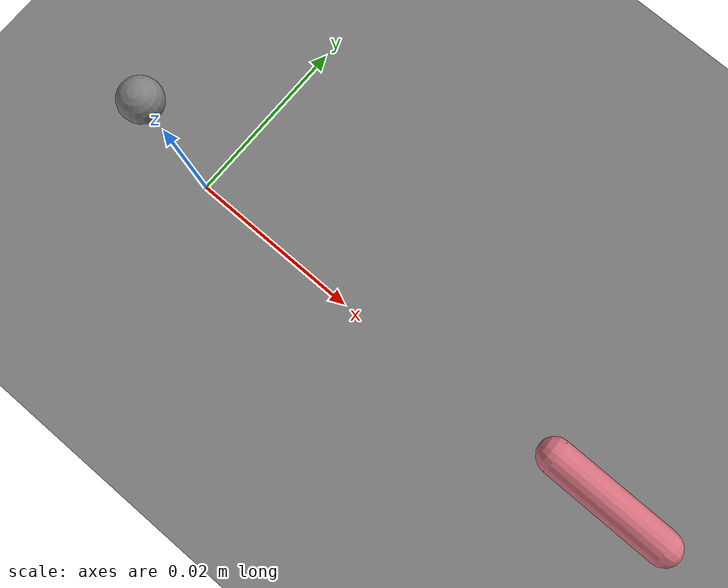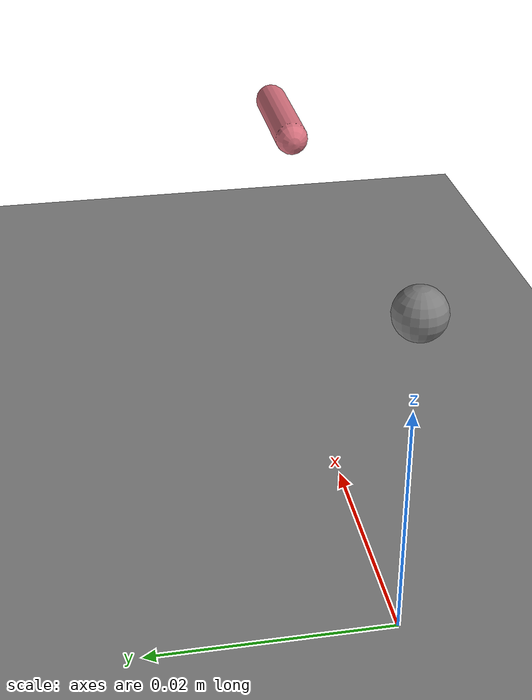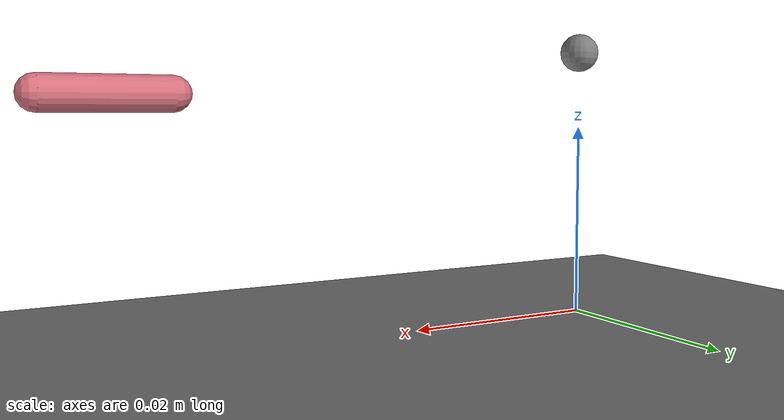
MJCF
<?xml version="1.0" encoding="utf-8"?>
<mujoco model="gecko_body_lab_candidate_v2">
  <compiler meshdir="meshes" texturedir="textures" angle="degree" autolimits="true" inertiafromgeom="true" eulerseq="xyz" />
  <option timestep="0.0008" iterations="100" ls_iterations="50" integrator="implicitfast" cone="elliptic" jacobian="dense">
    <flag eulerdamp="disable" />
  </option>
  <statistic center="0 0 0.02" extent="0.28" meansize="0.01" />
  <visual>
    <global offwidth="640" offheight="480" azimuth="135" elevation="-20" />
    <quality shadowsize="2048" />
    <headlight diffuse="0.7 0.7 0.7" ambient="0.35 0.35 0.35" />
    <map force="0.01" />
  </visual>
  <default>
    <!-- joints: small armature+damping stabilise the light limbs [EST] -->
    <joint type="hinge" limited="true" armature="0.0012" damping="0.005" frictionloss="0.0002" />
    <default class="collision">
      <!-- contype=2,conaffinity=1 vs floor(1,1) => body-floor contacts only -->
      <geom group="3" contype="2" conaffinity="1" condim="3" friction="0.9 0.005 0.0001" solref="0.006 1" solimp="0.95 0.99 0.001" rgba="0.4 0.5 0.55 0.35" />
    </default>
    <default class="visual">
      <geom group="1" contype="0" conaffinity="0" mass="0" rgba="0.78 0.72 0.45 1" />
    </default>
    <default class="pos_small">
      <!-- head/neck/toes authority -->
      <position kp="0.049673202614379075" kv="0.0024836601307189538" forcerange="-0.2483660130718954 0.2483660130718954" />
    </default>
  </default>
  <asset>
    <!-- the same image, addressed by the mesh's own UVs: a cube texture is
         addressed by POSITION and ignores texcoord entirely -->
    <!-- wet, unlike the skin: an eye is the one part that should catch a highlight -->
    <!-- whole animal, nose to tail, NOT tiled -->
    <!-- the tail is RINGED, not spotted: gecko_tail.png -->
    <!-- matte: at MuJoCo default specular a small black sphere is almost entirely highlight and reads CREAM, which is what made the eyes look like blobs -->
    <!-- lower jaw: skin colour, but NOT the skin class the generator rescales -->
    <!-- face/tail detail: same colour, NOT the class the generator rescales -->
    <!-- lip line, throat, lower flanks -->
  </asset>
  <worldbody>
    <light name="top" pos="0 0 0.6" dir="0 0 -1" directional="true" />
    <geom name="floor" type="plane" size="0 0 0.05" contype="1" conaffinity="1" condim="3" friction="0.9 0.005 0.0001" />
    <body name="trunk_middle" pos="0 0 0.028">
      <!-- generated skin, tools/make_gecko_mesh.py -->
      <!-- ROOT, ~CoM R-redist (root, ~CoM) -->
      <freejoint name="root" />
      <site name="imu" pos="0 0 0" size="0.002" />
      <site name="mid_back" pos="0 0 0.01196" size="0.0005" group="4" />
      <camera name="tracking" mode="trackcom" pos="0 -0.18 0.10" xyaxes="1 0 0 0 0.5 0.87" />
      <geom class="collision" type="capsule" fromto="-0.0095 0 0 0.0095 0 0" size="0.013" mass="0.0048955842084023281" />
      <!-- trunk_mid R-redist (root, ~CoM) -->
      <geom rgba="0 0 0 0" class="visual" type="ellipsoid" pos="0 0 0" size="0.0147 0.01365 0.01196" />
      <site name="belly_mid" type="box" pos="0.0 0 -0.0104" size="0.0114 0.0078 0.003" rgba="0.9 0.2 0.2 0.25" group="4" />
      <body name="trunk_anterior" pos="0.0095 0 0">
        <!-- generated skin, tools/make_gecko_mesh.py -->
        <site name="pectoral_center" pos="0.012500000000000001 0 -0.0094000000000000004" size="0.0005" group="4" />
        <joint name="spine_lat_1" axis="0 0 1" range="-25 25" stiffness="0.02" damping="0.006" />
        <!-- lateral bend 1 [R] -->
        <joint name="spine_pitch" axis="0 1 0" range="-10 10" stiffness="0.03" damping="0.006" />
        <!-- weakly actuated pitch [R] -->
        <geom class="collision" type="capsule" fromto="0 0 0 0.018 0 0" size="0.012" mass="0.0059951559717732411" />
        <!-- R-redist -->
        <geom rgba="0 0 0 0" class="visual" type="ellipsoid" pos="0.009 0 0" size="0.0126 0.0126 0.0114" />
        <body name="neck" pos="0.018 0 0">
          <!-- generated skin, tools/make_gecko_mesh.py -->
          <joint name="neck_yaw" axis="0 0 1" range="-40 40" />
          <joint name="neck_pitch" axis="0 1 0" range="-30 30" />
          <geom class="collision" type="capsule" fromto="0 0 0 0.008 0 0" size="0.008" mass="0.0017281263596576038" />
          <geom rgba="0 0 0 0" class="visual" type="capsule" fromto="0 0 0 0.008 0 0" size="0.00816" />
          <body name="head" pos="0.008 0 0">
            <!-- generated skin, tools/make_gecko_mesh.py -->
            <joint name="head_yaw" axis="0 0 1" range="-30 30" />
            <joint name="head_pitch" axis="0 1 0" range="-20 20" />
            <geom class="collision" type="ellipsoid" size="0.015949999999999999 0.0098049999999999995 0.0055649999999999996" mass="0.0045199560181738499" pos="0.01305 0 0" />
            <!-- R; 0.0006 moved to the jaw, head+jaw = 0.005 as before -->
            <geom rgba="0 0 0 0" class="visual" type="ellipsoid" pos="0.01305 0 0" size="0.015949999999999999 0.0098049999999999995 0.0055649999999999996" />
            <geom rgba="0 0 0 0" class="visual" type="ellipsoid" pos="0.02552 0 -0.0011" size="0.0052199999999999998 0.0066 0.0033275000000000002" />
            <geom rgba="0 0 0 0" class="visual" type="ellipsoid" pos="0.0138 0.0094 0.0104" size="0.0048 0.0036 0.0018" />
            <!-- L brow -->
            <geom rgba="0 0 0 0" class="visual" type="ellipsoid" pos="0.0138 -0.0094 0.0104" size="0.0048 0.0036 0.0018" />
            <!-- R brow -->
            <geom rgba="0 0 0 0" class="visual" type="ellipsoid" pos="0.0225 0 0.0035" size="0.0085 0.0058 0.0045" />
            <!-- snout bridge -->
            <geom rgba="0 0 0 0" class="visual" type="sphere" pos="0.0288 0 0.0008" size="0.0038" />
            <!-- rounded snout tip -->
            <geom class="visual" type="box" pos="0.0175 0.0058 -0.0030" size="0.0105 0.0016 0.0011" rgba="0 0 0 0" />
            <!-- L lip line -->
            <geom class="visual" type="box" pos="0.0175 -0.0058 -0.0030" size="0.0105 0.0016 0.0011" rgba="0 0 0 0" />
            <!-- R lip line -->
            <geom class="visual" type="sphere" pos="0.016820000000000002 0.0086 0.0067999999999999996" size="0.0036" rgba="0 0 0 0" />
            <!-- L eye -->
            <geom class="visual" type="sphere" pos="0.016820000000000002 -0.0086 0.0067999999999999996" size="0.0036" rgba="0 0 0 0" />
            <!-- R eye -->
            <camera name="head_cam" pos="0.02958 0 0.00682" xyaxes="0 -1 0 0 0 1" fovy="120" mode="fixed" />
            <site name="head_site" pos="0.02958 0 0.00682" size="0.001" group="4" />
            <site name="nose_tip" pos="0.029 0 0" size="0.001" rgba="1 0 0 0.6" group="4" />
            <body name="eyelid_L" pos="0.01682 0.01012 0.0072">
              <geom type="sphere" pos="0 0 0" size="0.0012" mass="1.0853670408245173e-05" contype="0" conaffinity="0" group="3" rgba="0 0 0 0" />
              <joint name="eyelid_L" axis="1 0 0" range="-75 0" />
              <geom class="visual" type="ellipsoid" pos="0 0 0.0026" size="0.0042 0.0042 0.0014" rgba="0 0 0 0" />
              <!-- L upper lid -->
              <site name="eyelid_tip_L" pos="0 0 -0.0038" size="0.0008" group="4" />
            </body>
            <!-- eyelid_L -->
            <body name="eyelid_R" pos="0.01682 -0.01012 0.0072">
              <geom type="sphere" pos="0 0 0" size="0.0012" mass="1.0853670408245173e-05" contype="0" conaffinity="0" group="3" rgba="0 0 0 0" />
              <joint name="eyelid_R" axis="1 0 0" range="0 75" />
              <geom class="visual" type="ellipsoid" pos="0 0 0.0026" size="0.0042 0.0042 0.0014" rgba="0 0 0 0" />
              <!-- R upper lid -->
              <site name="eyelid_tip_R" pos="0 0 -0.0038" size="0.0008" group="4" />
            </body>
            <!-- eyelid_R -->
            <body name="gular" pos="0.0120 0 -0.0072">
              <geom type="sphere" pos="0 0 0" size="0.0016" mass="4.1182253286301627e-05" contype="0" conaffinity="0" group="3" rgba="0 0 0 0" />
              <joint name="gular" axis="0 1 0" range="-14 6" />
              <geom class="visual" type="ellipsoid" pos="0.0020 0 0.0006" size="0.0092 0.0050 0.0017" rgba="0 0 0 0" />
              <site name="throat" pos="0.0022 0 -0.0050" size="0.0008" group="4" />
            </body>
            <!-- gular -->
            <body name="jaw" pos="0.0040 0 -0.0060">
              <joint name="jaw" axis="0 1 0" range="0 40" />
              <geom class="collision" type="capsule" fromto="0 0 0 0.0245 0 0" size="0.0032" mass="0.00063638130668083057" />
              <!-- 0.0006 less the 1e-5 now carried by the tongue body: the TEMPLATE mass stays 0.0612 (#343, same move as #306) -->
              <!-- generated mandible, swept at the head's own width -->
              <body name="tongue" pos="0 0 0">
                <geom type="sphere" pos="0.010 0 0.0012" size="0.0008" mass="1.0523572342627257e-05" contype="0" conaffinity="0" group="3" rgba="0 0 0 0" />
                <joint name="tongue" type="slide" axis="1 0 0" range="0 0.012" damping="0.002" />
                <geom class="visual" type="capsule" fromto="0.0045 0 0.0012 0.0155 0 0.0012" size="0.0016" rgba="0.85 0.45 0.50 1" />
                <site name="tongue_tip" pos="0.0165 0 0.0018" size="0.001" rgba="0.9 0.3 0.4 0.6" group="4" />
              </body>
              <!-- tongue -->
              <site name="mouth" pos="0.0115 0 0.0030" size="0.001" rgba="0 1 0 0.6" group="4" />
            </body>
            <!-- jaw -->
          </body>
          <!-- head -->
        </body>
        <!-- neck -->
        <body name="humerus_L" pos="0.012500000000000001 0.010999999999999999 -0.0094000000000000004">
          <!-- generated skin, tools/make_gecko_mesh.py -->
          <site name="shoulder_L" pos="0 0 0" size="0.0005" group="4" />
          <joint name="shoulder_sprawl_L" axis="1 0 0" range="-35 35" />
          <joint name="shoulder_proret_L" axis="0 0 1" range="-40 40" />
          <geom class="collision" type="capsule" fromto="0 0 0 -0.0038435905793392272 0.010890157112177317 -0.0027000000000000001" size="0.0025" mass="0.00091495247598478351" />
          <geom rgba="0 0 0 0" class="visual" type="capsule" fromto="0 0 0 -0.0038435905793392272 0.010890157112177317 -0.0027000000000000001" size="0.002625" />
          <body name="forearm_L" pos="-0.0038435905793392272 0.010890157112177317 -0.0027000000000000001">
            <!-- generated skin, tools/make_gecko_mesh.py -->
            <joint name="elbow_L" axis="0 1 0" range="-60 60" />
            <geom class="collision" type="capsule" fromto="0 0 0 0.0061395372186465519 0.012279038184394018 -0.0061000000000000004" size="0.002" mass="0.00061768585612739725" />
            <geom rgba="0 0 0 0" class="visual" type="capsule" fromto="0 0 0 0.0061395372186465519 0.012279038184394018 -0.0061000000000000004" size="0.0021" />
            <body name="manus_L" pos="0.0061395372186465519 0.012279038184394018 -0.0061000000000000004">
              <!-- generated skin, tools/make_gecko_mesh.py -->
              <joint name="wrist_L" axis="0 1 0" range="-35 35" stiffness="0.02" damping="0.003" />
              <!-- PASSIVE [R] -->
              <geom class="collision" type="box" pos="0.0030045264886472095 0 -0.0020557286501270379" size="0.0030045264886472095 0.0022138616232137334 0.0011069308116068667" mass="0.00016504420637639811" />
              <!-- forefoot pad (mass) -->
              <geom rgba="0 0 0 0" class="visual" type="box" pos="0.0030045264886472095 0 -0.0020557286501270379" size="0.0030045264886472095 0.0022138616232137334 0.0011069308116068667" />
              <site name="footzone_fore_L" type="box" pos="0.0057323202743927021 0 -0.0019608488662750207" size="0.0066811181129128724 0.0049653753549222298 0.0029096467047951924" rgba="0.2 0.8 0.3 0.16" group="4" />
              <geom class="visual" type="capsule" fromto="0.0057086003284296978 0 -0.0016603962174102998 0.0084457239595873059 -0.0026432163650900735 -0.0024691910282081658" size="0.00063253189234678097" rgba="0 0 0 0" />
              <!-- digit 1 (visual) -->
              <geom class="collision" type="capsule" fromto="0.0084457239595873059 -0.0026432163650900735 -0.0024691910282081658 0.0091108312443899456 -0.0032854655286330319 -0.0028808269704501421" size="0.00031626594617339049" mass="0" rgba="0.15 0.13 0.10 1" />
              <!-- claw 1 (contact, massless) -->
              <geom class="visual" type="capsule" fromto="0.0057086003284296978 0 -0.0016603962174102998 0.0097098389464423465 -0.0016166171038112483 -0.0025776860610429472" size="0.00063253189234678097" rgba="0 0 0 0" />
              <!-- digit 2 (visual) -->
              <geom class="collision" type="capsule" fromto="0.0097098389464423465 -0.0016166171038112483 -0.0025776860610429472 0.010567077793545321 -0.0019629599414657285 -0.0029893220032849235" size="0.00031626594617339049" mass="0" rgba="0.15 0.13 0.10 1" />
              <!-- claw 2 (contact, massless) -->
              <geom class="visual" type="capsule" fromto="0.0057086003284296978 0 -0.0016603962174102998 0.010348933357172227 0 -0.0026467269170925983" size="0.00063253189234678097" rgba="0 0 0 0" />
              <!-- digit 3 (visual) -->
              <geom class="collision" type="capsule" fromto="0.010348933357172227 0 -0.0026467269170925983 0.011273457784323589 0 -0.0030583628593345747" size="0.00031626594617339049" mass="0" rgba="0.15 0.13 0.10 1" />
              <!-- claw 3 (contact, massless) -->
              <geom class="visual" type="capsule" fromto="0.0057086003284296978 0 -0.0016603962174102998 0.010011003193685957 0.0017382925199528059 -0.0026467269170925983" size="0.00063253189234678097" rgba="0 0 0 0" />
              <!-- digit 4 (visual) -->
              <geom class="collision" type="capsule" fromto="0.010011003193685957 0.0017382925199528059 -0.0026467269170925983 0.010868242040788933 0.0020846432642559402 -0.0030583628593345747" size="0.00031626594617339049" mass="0" rgba="0.15 0.13 0.10 1" />
              <!-- claw 4 (contact, massless) -->
              <geom class="visual" type="capsule" fromto="0.0057086003284296978 0 -0.0016603962174102998 0.0087128105511307327 0.0029010917109512022 -0.0025480914751297725" size="0.00063253189234678097" rgba="0 0 0 0" />
              <!-- digit 5 (visual) -->
              <geom class="collision" type="capsule" fromto="0.0087128105511307327 0.0029010917109512022 -0.0025480914751297725 0.0093778387694468304 0.0035433408744941605 -0.0029597353240204028" size="0.00031626594617339049" mass="0" rgba="0.15 0.13 0.10 1" />
              <!-- claw 5 (contact, massless) -->
            </body>
            <!-- manus -->
          </body>
          <!-- forearm -->
        </body>
        <!-- humerus -->
        <body name="humerus_R" pos="0.012500000000000001 -0.010999999999999999 -0.0094000000000000004">
          <!-- generated skin, tools/make_gecko_mesh.py -->
          <site name="shoulder_R" pos="0 0 0" size="0.0005" group="4" />
          <joint name="shoulder_sprawl_R" axis="1 0 0" range="-35 35" />
          <joint name="shoulder_proret_R" axis="0 0 1" range="-40 40" />
          <geom class="collision" type="capsule" fromto="0 0 0 -0.0038435905793392272 -0.010890157112177317 -0.0027000000000000001" size="0.0025" mass="0.00091495247598478351" />
          <geom rgba="0 0 0 0" class="visual" type="capsule" fromto="0 0 0 -0.0038435905793392272 -0.010890157112177317 -0.0027000000000000001" size="0.002625" />
          <body name="forearm_R" pos="-0.0038435905793392272 -0.010890157112177317 -0.0027000000000000001">
            <!-- generated skin, tools/make_gecko_mesh.py -->
            <joint name="elbow_R" axis="0 1 0" range="-60 60" />
            <geom class="collision" type="capsule" fromto="0 0 0 0.0061395372186465519 -0.012279038184394018 -0.0061000000000000004" size="0.002" mass="0.00061768585612739725" />
            <geom rgba="0 0 0 0" class="visual" type="capsule" fromto="0 0 0 0.0061395372186465519 -0.012279038184394018 -0.0061000000000000004" size="0.0021" />
            <body name="manus_R" pos="0.0061395372186465519 -0.012279038184394018 -0.0061000000000000004">
              <!-- generated skin, tools/make_gecko_mesh.py -->
              <joint name="wrist_R" axis="0 1 0" range="-35 35" stiffness="0.02" damping="0.003" />
              <!-- PASSIVE [R] -->
              <geom class="collision" type="box" pos="0.0030045264886472095 0 -0.0020557286501270379" size="0.0030045264886472095 0.0022138616232137334 0.0011069308116068667" mass="0.00016504420637639811" />
              <!-- forefoot pad (mass) -->
              <geom rgba="0 0 0 0" class="visual" type="box" pos="0.0030045264886472095 0 -0.0020557286501270379" size="0.0030045264886472095 0.0022138616232137334 0.0011069308116068667" />
              <site name="footzone_fore_R" type="box" pos="0.0057323202743927021 0 -0.0019608488662750207" size="0.0066811181129128724 0.0049653753549222298 0.0029096467047951924" rgba="0.2 0.8 0.3 0.16" group="4" />
              <geom class="visual" type="capsule" fromto="0.0057086003284296978 0 -0.0016603962174102998 0.0084457239595873059 0.0026432163650900735 -0.0024691910282081658" size="0.00063253189234678097" rgba="0 0 0 0" />
              <!-- digit 1 (visual) -->
              <geom class="collision" type="capsule" fromto="0.0084457239595873059 0.0026432163650900735 -0.0024691910282081658 0.0091108312443899456 0.0032854655286330319 -0.0028808269704501421" size="0.00031626594617339049" mass="0" rgba="0.15 0.13 0.10 1" />
              <!-- claw 1 (contact, massless) -->
              <geom class="visual" type="capsule" fromto="0.0057086003284296978 0 -0.0016603962174102998 0.0097098389464423465 0.0016166171038112483 -0.0025776860610429472" size="0.00063253189234678097" rgba="0 0 0 0" />
              <!-- digit 2 (visual) -->
              <geom class="collision" type="capsule" fromto="0.0097098389464423465 0.0016166171038112483 -0.0025776860610429472 0.010567077793545321 0.0019629599414657285 -0.0029893220032849235" size="0.00031626594617339049" mass="0" rgba="0.15 0.13 0.10 1" />
              <!-- claw 2 (contact, massless) -->
              <geom class="visual" type="capsule" fromto="0.0057086003284296978 0 -0.0016603962174102998 0.010348933357172227 0 -0.0026467269170925983" size="0.00063253189234678097" rgba="0 0 0 0" />
              <!-- digit 3 (visual) -->
              <geom class="collision" type="capsule" fromto="0.010348933357172227 0 -0.0026467269170925983 0.011273457784323589 0 -0.0030583628593345747" size="0.00031626594617339049" mass="0" rgba="0.15 0.13 0.10 1" />
              <!-- claw 3 (contact, massless) -->
              <geom class="visual" type="capsule" fromto="0.0057086003284296978 0 -0.0016603962174102998 0.010011003193685957 -0.0017382925199528059 -0.0026467269170925983" size="0.00063253189234678097" rgba="0 0 0 0" />
              <!-- digit 4 (visual) -->
              <geom class="collision" type="capsule" fromto="0.010011003193685957 -0.0017382925199528059 -0.0026467269170925983 0.010868242040788933 -0.0020846432642559402 -0.0030583628593345747" size="0.00031626594617339049" mass="0" rgba="0.15 0.13 0.10 1" />
              <!-- claw 4 (contact, massless) -->
              <geom class="visual" type="capsule" fromto="0.0057086003284296978 0 -0.0016603962174102998 0.0087128105511307327 -0.0029010917109512022 -0.0025480914751297725" size="0.00063253189234678097" rgba="0 0 0 0" />
              <!-- digit 5 (visual) -->
              <geom class="collision" type="capsule" fromto="0.0087128105511307327 -0.0029010917109512022 -0.0025480914751297725 0.0093778387694468304 -0.0035433408744941605 -0.0029597353240204028" size="0.00031626594617339049" mass="0" rgba="0.15 0.13 0.10 1" />
              <!-- claw 5 (contact, massless) -->
            </body>
            <!-- manus -->
          </body>
          <!-- forearm -->
        </body>
        <!-- humerus -->
      </body>
      <!-- trunk_anterior -->
      <body name="trunk_posterior" pos="-0.0095 0 0">
        <joint name="spine_lat_2" axis="0 0 1" range="-25 25" stiffness="0.02" damping="0.006" />
        <!-- lateral bend 2 [R] -->
        <geom class="collision" type="capsule" fromto="0 0 0 -0.018 0 0" size="0.013" mass="0.0039976849400415824" />
        <!-- R-redist -->
        <geom rgba="0 0 0 0" class="visual" type="ellipsoid" pos="-0.009 0 0" size="0.0129 0.01365 0.01235" />
        <site name="belly_post" type="box" pos="-0.009 0 -0.0104" size="0.0108 0.0078 0.003" rgba="0.9 0.2 0.2 0.25" group="4" />
        <body name="pelvis" pos="-0.018 0 0">
          <site name="pelvis_center" pos="-0.007 0 -0.002" size="0.0005" group="4" />
          <joint name="spine_lat_3" axis="0 0 1" range="-25 25" stiffness="0.03" damping="0.007" />
          <!-- lateral bend 3 (lumbo-sacral) [R] -->
          <geom class="collision" type="capsule" fromto="0 0 0 -0.014 0 0" size="0.013" mass="0.0020969301614167778" />
          <geom rgba="0 0 0 0" class="visual" type="ellipsoid" pos="-0.007 0 0" size="0.01155 0.01456 0.013" />
          <site name="vent" pos="-0.014 0 0" size="0.001" rgba="1 0 0 0.6" group="4" />
          <body name="femur_L" pos="-0.007 0.012 -0.002">
            <!-- generated skin, tools/make_gecko_mesh.py -->
            <site name="hip_L" pos="0 0 0" size="0.0005" group="4" />
            <joint name="hip_sprawl_L" axis="1 0 0" range="-35 35" />
            <joint name="hip_proret_L" axis="0 0 1" range="-45 45" />
            <joint name="hip_rot_L" axis="0 1 0" range="-15 15" />
            <!-- long-axis -->
            <geom class="collision" type="capsule" fromto="0 0 0 -0.0066172123605431716 0.013234457808058039 -0.0040000000000000001" size="0.003" mass="0.00064713729955139529" />
            <geom rgba="0 0 0 0" class="visual" type="capsule" fromto="0 0 0 -0.0066172123605431716 0.013234457808058039 -0.0040000000000000001" size="0.00324" />
            <body name="tibia_L" pos="-0.0066172123605431716 0.013234457808058039 -0.0040000000000000001">
              <!-- generated skin, tools/make_gecko_mesh.py -->
              <joint name="knee_L" axis="0 1 0" range="-60 60" />
              <geom class="collision" type="capsule" fromto="0 0 0 -0.0027707696118629476 0.012666369743109798 -0.0076" size="0.0025" mass="0.00034577358324357514" />
              <geom rgba="0 0 0 0" class="visual" type="capsule" fromto="0 0 0 -0.0027707696118629476 0.012666369743109798 -0.0076" size="0.002625" />
              <body name="pes_L" pos="-0.0027707696118629476 0.012666369743109798 -0.0076">
                <!-- generated skin, tools/make_gecko_mesh.py -->
                <joint name="ankle_L" axis="0 1 0" range="-45 45" />
                <geom class="collision" type="box" pos="0.0037971374395781507 0 -0.0025314249597187676" size="0.0037971374395781507 0.002700186623700019 0.0013500933118500095" mass="0.00015779051242063584" />
                <!-- hindfoot pad (mass) -->
                <geom rgba="0 0 0 0" class="visual" type="box" pos="0.0037971374395781507 0 -0.0025314249597187676" size="0.0037971374395781507 0.002700186623700019 0.0013500933118500095" />
                <site name="footzone_hind_L" type="box" pos="0.0073791037575802066 0 -0.0024386060445290795" size="0.0083916737414677142 0.0064551336472828567 0.0034511760284165862" rgba="0.2 0.8 0.3 0.16" group="4" />
                <geom class="visual" type="capsule" fromto="0.0072145611351984874 0 -0.0021095207997656397 0.010865972877928828 -0.0035260977691410626 -0.0031884647460969726" size="0.00075942748791563023" rgba="0 0 0 0" />
                <!-- digit 1 (visual) -->
                <geom class="collision" type="capsule" fromto="0.010865972877928828 -0.0035260977691410626 -0.0031884647460969726 0.011664468691056118 -0.0042971951261209966 -0.0036826832790660671" size="0.00037971374395781511" mass="0" rgba="0.15 0.13 0.10 1" />
                <!-- claw 1 (contact, massless) -->
                <geom class="visual" type="capsule" fromto="0.0072145611351984874 0 -0.0021095207997656397 0.01255232380526148 -0.0021565884278500107 -0.0033331947491272939" size="0.00075942748791563023" rgba="0 0 0 0" />
                <!-- digit 2 (visual) -->
                <geom class="collision" type="capsule" fromto="0.01255232380526148 -0.0021565884278500107 -0.0033331947491272939 0.013581516813051139 -0.0025724171678998134 -0.0038274132820963875" size="0.00037971374395781511" mass="0" rgba="0.15 0.13 0.10 1" />
                <!-- claw 2 (contact, massless) -->
                <geom class="visual" type="capsule" fromto="0.0072145611351984874 0 -0.0021095207997656397 0.013404823350862771 0 -0.0034253048653282605" size="0.00075942748791563023" rgba="0 0 0 0" />
                <!-- digit 3 (visual) -->
                <geom class="collision" type="capsule" fromto="0.013404823350862771 0 -0.0034253048653282605 0.014514853195699451 0 -0.0039195233982973546" size="0.00037971374395781511" mass="0" rgba="0.15 0.13 0.10 1" />
                <!-- claw 3 (contact, massless) -->
                <geom class="visual" type="capsule" fromto="0.0072145611351984874 0 -0.0021095207997656397 0.012954060946368849 0.0023189118343503769 -0.0034253048653282605" size="0.00075942748791563023" rgba="0 0 0 0" />
                <!-- digit 4 (visual) -->
                <geom class="collision" type="capsule" fromto="0.012954060946368849 0.0023189118343503769 -0.0034253048653282605 0.013983253954158508 0.0027347405744001796 -0.0039195233982973546" size="0.00037971374395781511" mass="0" rgba="0.15 0.13 0.10 1" />
                <!-- claw 4 (contact, massless) -->
                <geom class="visual" type="capsule" fromto="0.0072145611351984874 0 -0.0021095207997656397 0.011222144369761258 0.0038701099830836445 -0.0032937213959220789" size="0.00075942748791563023" rgba="0 0 0 0" />
                <!-- digit 5 (visual) -->
                <geom class="collision" type="capsule" fromto="0.011222144369761258 0.0038701099830836445 -0.0032937213959220789 0.012020640182888549 0.0046412073400635776 -0.0037879399288911733" size="0.00037971374395781511" mass="0" rgba="0.15 0.13 0.10 1" />
                <!-- claw 5 (contact, massless) -->
              </body>
              <!-- pes -->
            </body>
            <!-- tibia -->
          </body>
          <!-- femur -->
          <body name="femur_R" pos="-0.007 -0.012 -0.002">
            <!-- generated skin, tools/make_gecko_mesh.py -->
            <site name="hip_R" pos="0 0 0" size="0.0005" group="4" />
            <joint name="hip_sprawl_R" axis="1 0 0" range="-35 35" />
            <joint name="hip_proret_R" axis="0 0 1" range="-45 45" />
            <joint name="hip_rot_R" axis="0 1 0" range="-15 15" />
            <!-- long-axis -->
            <geom class="collision" type="capsule" fromto="0 0 0 -0.0066172123605431716 -0.013234457808058039 -0.0040000000000000001" size="0.003" mass="0.00064713729955139529" />
            <geom rgba="0 0 0 0" class="visual" type="capsule" fromto="0 0 0 -0.0066172123605431716 -0.013234457808058039 -0.0040000000000000001" size="0.00324" />
            <body name="tibia_R" pos="-0.0066172123605431716 -0.013234457808058039 -0.0040000000000000001">
              <!-- generated skin, tools/make_gecko_mesh.py -->
              <joint name="knee_R" axis="0 1 0" range="-60 60" />
              <geom class="collision" type="capsule" fromto="0 0 0 -0.0027707696118629476 -0.012666369743109798 -0.0076" size="0.0025" mass="0.00034577358324357514" />
              <geom rgba="0 0 0 0" class="visual" type="capsule" fromto="0 0 0 -0.0027707696118629476 -0.012666369743109798 -0.0076" size="0.002625" />
              <body name="pes_R" pos="-0.0027707696118629476 -0.012666369743109798 -0.0076">
                <!-- generated skin, tools/make_gecko_mesh.py -->
                <joint name="ankle_R" axis="0 1 0" range="-45 45" />
                <geom class="collision" type="box" pos="0.0037971374395781507 0 -0.0025314249597187676" size="0.0037971374395781507 0.002700186623700019 0.0013500933118500095" mass="0.00015779051242063584" />
                <!-- hindfoot pad (mass) -->
                <geom rgba="0 0 0 0" class="visual" type="box" pos="0.0037971374395781507 0 -0.0025314249597187676" size="0.0037971374395781507 0.002700186623700019 0.0013500933118500095" />
                <site name="footzone_hind_R" type="box" pos="0.0073791037575802066 0 -0.0024386060445290795" size="0.0083916737414677142 0.0064551336472828567 0.0034511760284165862" rgba="0.2 0.8 0.3 0.16" group="4" />
                <geom class="visual" type="capsule" fromto="0.0072145611351984874 0 -0.0021095207997656397 0.010865972877928828 0.0035260977691410626 -0.0031884647460969726" size="0.00075942748791563023" rgba="0 0 0 0" />
                <!-- digit 1 (visual) -->
                <geom class="collision" type="capsule" fromto="0.010865972877928828 0.0035260977691410626 -0.0031884647460969726 0.011664468691056118 0.0042971951261209966 -0.0036826832790660671" size="0.00037971374395781511" mass="0" rgba="0.15 0.13 0.10 1" />
                <!-- claw 1 (contact, massless) -->
                <geom class="visual" type="capsule" fromto="0.0072145611351984874 0 -0.0021095207997656397 0.01255232380526148 0.0021565884278500107 -0.0033331947491272939" size="0.00075942748791563023" rgba="0 0 0 0" />
                <!-- digit 2 (visual) -->
                <geom class="collision" type="capsule" fromto="0.01255232380526148 0.0021565884278500107 -0.0033331947491272939 0.013581516813051139 0.0025724171678998134 -0.0038274132820963875" size="0.00037971374395781511" mass="0" rgba="0.15 0.13 0.10 1" />
                <!-- claw 2 (contact, massless) -->
                <geom class="visual" type="capsule" fromto="0.0072145611351984874 0 -0.0021095207997656397 0.013404823350862771 0 -0.0034253048653282605" size="0.00075942748791563023" rgba="0 0 0 0" />
                <!-- digit 3 (visual) -->
                <geom class="collision" type="capsule" fromto="0.013404823350862771 0 -0.0034253048653282605 0.014514853195699451 0 -0.0039195233982973546" size="0.00037971374395781511" mass="0" rgba="0.15 0.13 0.10 1" />
                <!-- claw 3 (contact, massless) -->
                <geom class="visual" type="capsule" fromto="0.0072145611351984874 0 -0.0021095207997656397 0.012954060946368849 -0.0023189118343503769 -0.0034253048653282605" size="0.00075942748791563023" rgba="0 0 0 0" />
                <!-- digit 4 (visual) -->
                <geom class="collision" type="capsule" fromto="0.012954060946368849 -0.0023189118343503769 -0.0034253048653282605 0.013983253954158508 -0.0027347405744001796 -0.0039195233982973546" size="0.00037971374395781511" mass="0" rgba="0.15 0.13 0.10 1" />
                <!-- claw 4 (contact, massless) -->
                <geom class="visual" type="capsule" fromto="0.0072145611351984874 0 -0.0021095207997656397 0.011222144369761258 -0.0038701099830836445 -0.0032937213959220789" size="0.00075942748791563023" rgba="0 0 0 0" />
                <!-- digit 5 (visual) -->
                <geom class="collision" type="capsule" fromto="0.011222144369761258 -0.0038701099830836445 -0.0032937213959220789 0.012020640182888549 -0.0046412073400635776 -0.0037879399288911733" size="0.00037971374395781511" mass="0" rgba="0.15 0.13 0.10 1" />
                <!-- claw 5 (contact, massless) -->
              </body>
              <!-- pes -->
            </body>
            <!-- tibia -->
          </body>
          <!-- femur -->
          <body name="tail1" pos="-0.014 0 0">
            <!-- generated skin, tools/make_gecko_mesh.py -->
            <geom rgba="0 0 0 0" class="visual" type="ellipsoid" pos="0.0047834909090909081 0 0" size="0.0073862727272727266 0.0118 0.0106" />
            <!-- fat-tail shape -->
            <joint name="tail_yaw_1" axis="0 0 1" range="-30 30" stiffness="0.02" damping="0.012" />
            <!-- high damping: no whip [R/EST] -->
            <joint name="tail_lift" axis="0 1 0" range="-25 25" stiffness="0.04" damping="0.012" />
            <!-- base lift/pitch [R] -->
            <geom class="collision" type="capsule" fromto="0 0 0 -0.019696727272727269 0 0" size="0.0055" mass="0.0042819129123997605" />
            <!-- tail1 heavy base R -->
            <geom rgba="0 0 0 0" class="visual" type="ellipsoid" pos="-0.0098483636363636343 0 0" size="0.010622163636363634 0.0063249999999999999 0.0063249999999999999" />
            <body name="tail2" pos="-0.019696727272727269 0 0">
              <!-- generated skin, tools/make_gecko_mesh.py -->
              <geom rgba="0 0 0 0" class="visual" type="ellipsoid" pos="0.0043614181818181809 0 0" size="0.0067531636363636349 0.0132 0.012" />
              <!-- fat-tail shape -->
              <joint name="tail_yaw_2" axis="0 0 1" range="-30 30" stiffness="0.018" damping="0.010" />
              <geom class="collision" type="capsule" fromto="0 0 0 -0.016882909090909087 0 0" size="0.0045" mass="0.0024266195630414274" />
              <geom rgba="0 0 0 0" class="visual" type="ellipsoid" pos="-0.0084414545454545437 0 0" size="0.0090745636363636344 0.0054000000000000003 0.0054000000000000003" />
              <body name="tail3" pos="-0.016882909090909087 0 0">
                <!-- generated skin, tools/make_gecko_mesh.py -->
                <geom rgba="0 0 0 0" class="visual" type="ellipsoid" pos="0.0040800363636363628 0 0" size="0.0063310909090909077 0.012 0.010800000000000001" />
                <!-- fat-tail shape -->
                <joint name="tail_yaw_3" axis="0 0 1" range="-30 30" stiffness="0.018" damping="0.010" />
                <geom class="collision" type="capsule" fromto="0 0 0 -0.015475999999999997 0 0" size="0.0035" mass="0.0012921665257550361" />
                <geom rgba="0 0 0 0" class="visual" type="ellipsoid" pos="-0.0077379999999999984 0 0" size="0.0082304181818181801 0.0041999999999999997 0.0041999999999999997" />
                <body name="tail4" pos="-0.015475999999999997 0 0">
                  <!-- generated skin, tools/make_gecko_mesh.py -->
                  <geom rgba="0 0 0 0" class="visual" type="ellipsoid" pos="0.0036579636363636356 0 0" size="0.005697981818181817 0.0091999999999999998 0.0082000000000000007" />
                  <!-- fat-tail shape -->
                  <joint name="tail_yaw_4" axis="0 0 1" range="-30 30" stiffness="0.018" damping="0.010" />
                  <geom class="collision" type="capsule" fromto="0 0 0 -0.013365636363636361 0 0" size="0.0025" mass="0.00030356766547044354" />
                  <geom rgba="0 0 0 0" class="visual" type="ellipsoid" pos="-0.0066828181818181804 0 0" size="0.007034545454545453 0.0030000000000000001 0.0030000000000000001" />
                  <body name="tail5" pos="-0.013365636363636361 0 0">
                    <!-- generated skin, tools/make_gecko_mesh.py -->
                    <joint name="tail_yaw_5" axis="0 0 1" range="-30 30" stiffness="0.018" damping="0.010" />
                    <geom class="collision" type="capsule" fromto="0 0 0 -0.011958727272727272 0 0" size="0.0015" mass="5.5733333333333344e-05" />
                    <geom rgba="0 0 0 0" class="visual" type="ellipsoid" pos="-0.005979363636363636 0 0" size="0.0061903999999999995 0.0018 0.0018" />
                    <site name="tail_tip" pos="-0.011958727272727272 0 0" size="0.001" rgba="1 0 0 0.6" group="4" />
                  </body>
                  <!-- tail5 -->
                </body>
                <!-- tail4 -->
              </body>
              <!-- tail3 -->
            </body>
            <!-- tail2 -->
          </body>
          <!-- tail1 -->
        </body>
        <!-- pelvis -->
      </body>
      <!-- trunk_posterior -->
    </body>
    <!-- trunk_middle (root) -->
  </worldbody>
  <tendon>
    <!-- spine: one fixed tendon couples the 3 lateral joints into a
         smooth lizard S-curve (single actuator). Spatial routing is a
         future muscle-level upgrade. [R] -->
    <fixed name="spine_bend" stiffness="0.01" damping="0.004">
      <joint joint="spine_lat_1" coef="1.0" />
      <joint joint="spine_lat_2" coef="-1.0" />
      <joint joint="spine_lat_3" coef="-0.8" />
    </fixed>
    <!-- tail: LEFT/RIGHT antagonist pair over the 5 yaw joints
         (muscle-like push-pull). Opposite-sign coefs; co-activation
         stiffens, differential bends. High joint damping prevents whip. -->
    <fixed name="tail_bend_L" stiffness="0.008" damping="0.005">
      <joint joint="tail_yaw_1" coef="1" />
      <joint joint="tail_yaw_2" coef="0.94" />
      <joint joint="tail_yaw_3" coef="0.88" />
      <joint joint="tail_yaw_4" coef="0.82" />
      <joint joint="tail_yaw_5" coef="0.76" />
    </fixed>
    <fixed name="tail_bend_R" stiffness="0.008" damping="0.005">
      <joint joint="tail_yaw_1" coef="-1" />
      <joint joint="tail_yaw_2" coef="-0.94" />
      <joint joint="tail_yaw_3" coef="-0.88" />
      <joint joint="tail_yaw_4" coef="-0.82" />
      <joint joint="tail_yaw_5" coef="-0.76" />
    </fixed>
  </tendon>
  <actuator>
    <!-- ===== HINDLIMB (10) ===== -->
    <position name="hip_sprawl_L" joint="hip_sprawl_L" kp="0.52777777777777768" kv="0.0086928104575163395" ctrlrange="-0.610865 0.610865" forcerange="-0.86928104575163379 0.86928104575163379" />
    <position name="hip_proret_L" joint="hip_proret_L" kp="0.52777777777777768" kv="0.0086928104575163395" ctrlrange="-0.78539816339744828 0.78539816339744828" forcerange="-0.86928104575163379 0.86928104575163379" />
    <position name="hip_rot_L" joint="hip_rot_L" kp="0.36944444444444435" kv="0.0086928104575163395" ctrlrange="-0.26179938779914941 0.26179938779914941" forcerange="-0.62091503267973847 0.62091503267973847" />
    <position name="knee_L" joint="knee_L" kp="0.46568627450980382" kv="0.0074509803921568619" ctrlrange="-1.0472 1.0472" forcerange="-0.86928104575163379 0.86928104575163379" />
    <position name="ankle_L" joint="ankle_L" kp="0.18627450980392155" kv="0.0031045751633986922" ctrlrange="-0.785398 0.785398" forcerange="-0.37254901960784309 0.37254901960784309" />
    <position name="hip_sprawl_R" joint="hip_sprawl_R" kp="0.52777777777777768" kv="0.0086928104575163395" ctrlrange="-0.610865 0.610865" forcerange="-0.86928104575163379 0.86928104575163379" />
    <position name="hip_proret_R" joint="hip_proret_R" kp="0.52777777777777768" kv="0.0086928104575163395" ctrlrange="-0.78539816339744828 0.78539816339744828" forcerange="-0.86928104575163379 0.86928104575163379" />
    <position name="hip_rot_R" joint="hip_rot_R" kp="0.36944444444444435" kv="0.0086928104575163395" ctrlrange="-0.26179938779914941 0.26179938779914941" forcerange="-0.62091503267973847 0.62091503267973847" />
    <position name="knee_R" joint="knee_R" kp="0.46568627450980382" kv="0.0074509803921568619" ctrlrange="-1.0472 1.0472" forcerange="-0.86928104575163379 0.86928104575163379" />
    <position name="ankle_R" joint="ankle_R" kp="0.18627450980392155" kv="0.0031045751633986922" ctrlrange="-0.785398 0.785398" forcerange="-0.37254901960784309 0.37254901960784309" />
    <!-- ===== FORELIMB (6); wrist is passive (no actuator) ===== -->
    <position name="shoulder_sprawl_L" joint="shoulder_sprawl_L" kp="0.37254901960784309" kv="0.0062091503267973844" ctrlrange="-0.610865 0.610865" forcerange="-0.68300653594771232 0.68300653594771232" />
    <position name="shoulder_proret_L" joint="shoulder_proret_L" kp="0.37254901960784309" kv="0.0062091503267973844" ctrlrange="-0.698132 0.698132" forcerange="-0.68300653594771232 0.68300653594771232" />
    <position name="elbow_L" joint="elbow_L" kp="0.31045751633986923" kv="0.0055882352941176456" ctrlrange="-1.0472 1.0472" forcerange="-0.68300653594771232 0.68300653594771232" />
    <position name="shoulder_sprawl_R" joint="shoulder_sprawl_R" kp="0.37254901960784309" kv="0.0062091503267973844" ctrlrange="-0.610865 0.610865" forcerange="-0.68300653594771232 0.68300653594771232" />
    <position name="shoulder_proret_R" joint="shoulder_proret_R" kp="0.37254901960784309" kv="0.0062091503267973844" ctrlrange="-0.698132 0.698132" forcerange="-0.68300653594771232 0.68300653594771232" />
    <position name="elbow_R" joint="elbow_R" kp="0.31045751633986923" kv="0.0055882352941176456" ctrlrange="-1.0472 1.0472" forcerange="-0.68300653594771232 0.68300653594771232" />
    <!-- ===== NECK/HEAD (4) ===== -->
    <position name="neck_yaw" joint="neck_yaw" class="pos_small" kp="0.062091503267973851" kv="0.0024836601307189538" ctrlrange="-0.698132 0.698132" />
    <position name="neck_pitch" joint="neck_pitch" class="pos_small" kp="0.062091503267973851" kv="0.0024836601307189538" ctrlrange="-0.523599 0.523599" />
    <position name="head_yaw" joint="head_yaw" class="pos_small" kp="0.037254901960784306" kv="0.0018627450980392155" ctrlrange="-0.523599 0.523599" />
    <position name="head_pitch" joint="head_pitch" class="pos_small" kp="0.037254901960784306" kv="0.0018627450980392155" ctrlrange="-0.349066 0.349066" />
    <!-- JAW: group 2 = driven by the brain's strike, never by the walking policy -->
    <position name="eyelid_L" joint="eyelid_L" class="pos_small" group="2" kp="0.31045751633986923" kv="0.012418300653594769" ctrlrange="-1.308997 0" />
    <position name="eyelid_R" joint="eyelid_R" class="pos_small" group="2" kp="0.31045751633986923" kv="0.012418300653594769" ctrlrange="0 1.308997" />
    <position name="tongue" joint="tongue" class="pos_small" group="2" kp="0.31045751633986923" kv="0.012418300653594769" ctrlrange="0 0.012" />
    <position name="gular" joint="gular" class="pos_small" group="2" kp="0.2483660130718954" kv="0.0093137254901960766" ctrlrange="-0.244346 0.104720" />
    <position name="jaw" joint="jaw" class="pos_small" group="2" kp="0.93137254901960764" kv="0.046568627450980386" forcerange="-0.93137254901960764 0.93137254901960764" ctrlrange="0 0.698132" />
    <!-- ===== AXIAL (5): spine bend tendon, spine pitch, tail L/R, tail lift ===== -->
    <position name="spine_bend" tendon="spine_bend" kp="0.18627450980392155" kv="0.0074509803921568619" ctrlrange="-1.2 1.2" forcerange="-0.55882352941176461 0.55882352941176461" />
    <position name="spine_pitch" joint="spine_pitch" kp="0.049673202614379075" kv="0.0024836601307189538" ctrlrange="-0.174533 0.174533" forcerange="-0.31045751633986923 0.31045751633986923" />
    <!-- weak posture ctrl -->
    <position name="tail_bend_L" tendon="tail_bend_L" kp="0.13660130718954247" kv="0.0074509803921568619" ctrlrange="-2.3 2.3" forcerange="-0.49673202614379081 0.49673202614379081" />
    <position name="tail_bend_R" tendon="tail_bend_R" kp="0.13660130718954247" kv="0.0074509803921568619" ctrlrange="-2.3 2.3" forcerange="-0.49673202614379081 0.49673202614379081" />
    <position name="tail_lift" joint="tail_lift" kp="0.093137254901960773" kv="0.003725490196078431" ctrlrange="-0.436332 0.436332" forcerange="-0.37254901960784309 0.37254901960784309" />
  </actuator>
  <sensor>
    <!-- proprioception: all 32 hinge joints (pos + vel) -->
    <jointpos name="qp_spine_lat_1" joint="spine_lat_1" />
    <jointpos name="qp_spine_pitch" joint="spine_pitch" />
    <jointpos name="qp_spine_lat_2" joint="spine_lat_2" />
    <jointpos name="qp_spine_lat_3" joint="spine_lat_3" />
    <jointpos name="qp_neck_yaw" joint="neck_yaw" />
    <jointpos name="qp_neck_pitch" joint="neck_pitch" />
    <jointpos name="qp_head_yaw" joint="head_yaw" />
    <jointpos name="qp_head_pitch" joint="head_pitch" />
    <jointpos name="qp_jaw" joint="jaw" />
    <jointpos name="qp_eyelid_L" joint="eyelid_L" />
    <jointpos name="qp_eyelid_R" joint="eyelid_R" />
    <jointpos name="qp_tongue" joint="tongue" />
    <jointpos name="qp_gular" joint="gular" />
    <jointpos name="qp_tail_yaw_1" joint="tail_yaw_1" />
    <jointpos name="qp_tail_lift" joint="tail_lift" />
    <jointpos name="qp_tail_yaw_2" joint="tail_yaw_2" />
    <jointpos name="qp_tail_yaw_3" joint="tail_yaw_3" />
    <jointpos name="qp_tail_yaw_4" joint="tail_yaw_4" />
    <jointpos name="qp_tail_yaw_5" joint="tail_yaw_5" />
    <jointpos name="qp_shoulder_sprawl_L" joint="shoulder_sprawl_L" />
    <jointpos name="qp_shoulder_proret_L" joint="shoulder_proret_L" />
    <jointpos name="qp_elbow_L" joint="elbow_L" />
    <jointpos name="qp_wrist_L" joint="wrist_L" />
    <jointpos name="qp_hip_sprawl_L" joint="hip_sprawl_L" />
    <jointpos name="qp_hip_proret_L" joint="hip_proret_L" />
    <jointpos name="qp_hip_rot_L" joint="hip_rot_L" />
    <jointpos name="qp_knee_L" joint="knee_L" />
    <jointpos name="qp_ankle_L" joint="ankle_L" />
    <jointpos name="qp_shoulder_sprawl_R" joint="shoulder_sprawl_R" />
    <jointpos name="qp_shoulder_proret_R" joint="shoulder_proret_R" />
    <jointpos name="qp_elbow_R" joint="elbow_R" />
    <jointpos name="qp_wrist_R" joint="wrist_R" />
    <jointpos name="qp_hip_sprawl_R" joint="hip_sprawl_R" />
    <jointpos name="qp_hip_proret_R" joint="hip_proret_R" />
    <jointpos name="qp_hip_rot_R" joint="hip_rot_R" />
    <jointpos name="qp_knee_R" joint="knee_R" />
    <jointpos name="qp_ankle_R" joint="ankle_R" />
    <jointvel name="qv_spine_lat_1" joint="spine_lat_1" />
    <jointvel name="qv_spine_pitch" joint="spine_pitch" />
    <jointvel name="qv_spine_lat_2" joint="spine_lat_2" />
    <jointvel name="qv_spine_lat_3" joint="spine_lat_3" />
    <jointvel name="qv_neck_yaw" joint="neck_yaw" />
    <jointvel name="qv_neck_pitch" joint="neck_pitch" />
    <jointvel name="qv_head_yaw" joint="head_yaw" />
    <jointvel name="qv_head_pitch" joint="head_pitch" />
    <jointvel name="qv_jaw" joint="jaw" />
    <jointvel name="qv_eyelid_L" joint="eyelid_L" />
    <jointvel name="qv_eyelid_R" joint="eyelid_R" />
    <jointvel name="qv_tongue" joint="tongue" />
    <jointvel name="qv_gular" joint="gular" />
    <jointvel name="qv_tail_yaw_1" joint="tail_yaw_1" />
    <jointvel name="qv_tail_lift" joint="tail_lift" />
    <jointvel name="qv_tail_yaw_2" joint="tail_yaw_2" />
    <jointvel name="qv_tail_yaw_3" joint="tail_yaw_3" />
    <jointvel name="qv_tail_yaw_4" joint="tail_yaw_4" />
    <jointvel name="qv_tail_yaw_5" joint="tail_yaw_5" />
    <jointvel name="qv_shoulder_sprawl_L" joint="shoulder_sprawl_L" />
    <jointvel name="qv_shoulder_proret_L" joint="shoulder_proret_L" />
    <jointvel name="qv_elbow_L" joint="elbow_L" />
    <jointvel name="qv_wrist_L" joint="wrist_L" />
    <jointvel name="qv_hip_sprawl_L" joint="hip_sprawl_L" />
    <jointvel name="qv_hip_proret_L" joint="hip_proret_L" />
    <jointvel name="qv_hip_rot_L" joint="hip_rot_L" />
    <jointvel name="qv_knee_L" joint="knee_L" />
    <jointvel name="qv_ankle_L" joint="ankle_L" />
    <jointvel name="qv_shoulder_sprawl_R" joint="shoulder_sprawl_R" />
    <jointvel name="qv_shoulder_proret_R" joint="shoulder_proret_R" />
    <jointvel name="qv_elbow_R" joint="elbow_R" />
    <jointvel name="qv_wrist_R" joint="wrist_R" />
    <jointvel name="qv_hip_sprawl_R" joint="hip_sprawl_R" />
    <jointvel name="qv_hip_proret_R" joint="hip_proret_R" />
    <jointvel name="qv_hip_rot_R" joint="hip_rot_R" />
    <jointvel name="qv_knee_R" joint="knee_R" />
    <jointvel name="qv_ankle_R" joint="ankle_R" />
    <!-- tendon (spine + tail) length &amp; velocity -->
    <tendonpos name="tp_spine_bend" tendon="spine_bend" />
    <tendonvel name="tv_spine_bend" tendon="spine_bend" />
    <tendonpos name="tp_tail_bend_L" tendon="tail_bend_L" />
    <tendonvel name="tv_tail_bend_L" tendon="tail_bend_L" />
    <tendonpos name="tp_tail_bend_R" tendon="tail_bend_R" />
    <tendonvel name="tv_tail_bend_R" tendon="tail_bend_R" />
    <!-- vestibular / upright: trunk IMU + gravity-axis in body frames -->
    <framezaxis name="up_trunk" objtype="site" objname="imu" />
    <framequat name="orient_trunk" objtype="site" objname="imu" />
    <gyro name="gyro_trunk" site="imu" />
    <accelerometer name="accel_trunk" site="imu" />
    <velocimeter name="vel_trunk" site="imu" />
    <framezaxis name="up_head" objtype="site" objname="head_site" />
    <framepos name="head_pos" objtype="site" objname="head_site" />
    <!-- contacts: 4 feet (summarised per foot) + 2 belly -->
    <touch name="touch_fore_L" site="footzone_fore_L" />
    <touch name="touch_fore_R" site="footzone_fore_R" />
    <touch name="touch_hind_L" site="footzone_hind_L" />
    <touch name="touch_hind_R" site="footzone_hind_R" />
    <touch name="touch_belly_mid" site="belly_mid" />
    <touch name="touch_belly_post" site="belly_post" />
  </sensor>
  <keyframe>
    <key name="neutral" qpos="0 0 0.028000000000000001 1 0 0 0 0 0 0 0 0 0 0 0 0 0 0 0 0 0 0 0 0 0 0 0 0 0 0 0 0 0 0 0 0 0 0 0 0 0 0" />
    <key name="stand" qpos="-0.001119758424331847 1.0460336674422829e-18 0.019752999456017169 0.99958991530617858 1.0126860902931701e-18 -0.028635663397003075 1.538989170074212e-19 -1.8134914106486511e-20 0.0031363281253725243 9.0812641990466877e-21 0.01920047354374824 4.741438511913222e-21 0.015426748694518197 -1.982276622386245e-23 5.7983672103214345e-24 -1.0570671681586154e-13 7.0959454668897363e-05 -7.3092092634916753e-08 0.0056681411397225242 -2.4970097703089718e-05 -0.001976107677412135 -5.9387091246787442e-05 -0.0056681411397225233 2.4970097703089671e-05 -0.001976107677412135 -5.9387091246787333e-05 8.6619835262830567e-20 6.9841982233821911e-20 0.0041495601541853581 -0.00022378476277805018 0.0019312693572574116 0.00021800665012212554 -4.159614508449795e-05 -0.0041495601541853572 0.00022378476277805045 0.0019312693572574112 0.00021800665012212554 -4.1596145084498065e-05 -5.0148027088692734e-22 -0.013821330956451997 9.1441594781602396e-22 3.4237784549552286e-22 -1.5718128459987919e-22 -2.86536025507279e-22" />
  </keyframe>
</mujoco>
